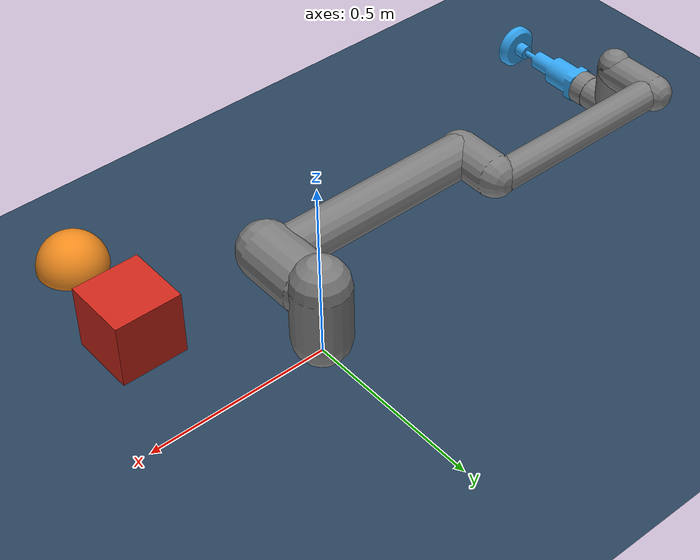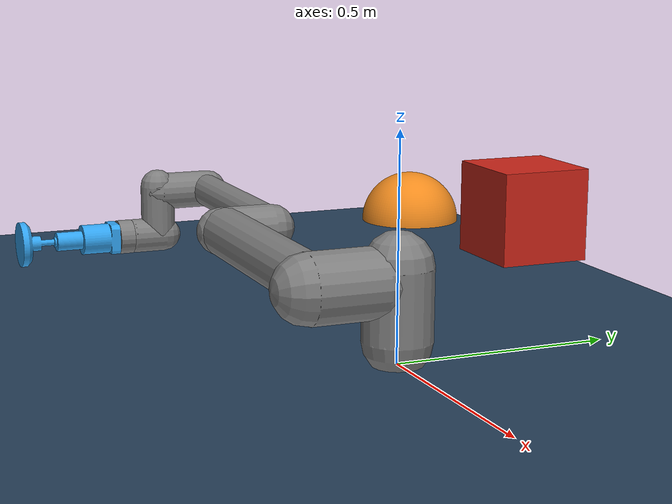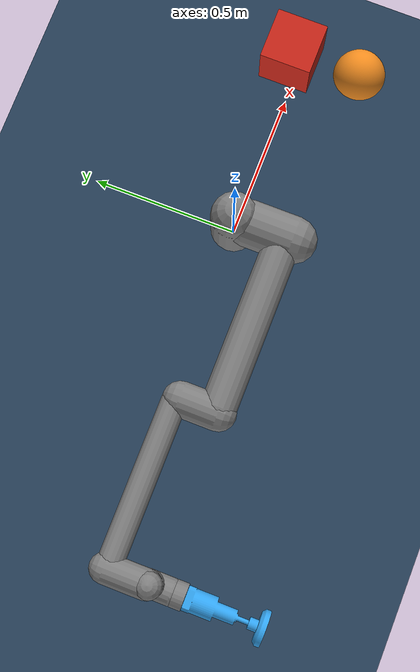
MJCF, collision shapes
<mujoco model="ur10e contact scene">
  <include file="ur10e.xml"/>

  <statistic center="0.35 0 0.45" extent="1.3"/>

  <option timestep="0.001" integrator="implicitfast" gravity="0 0 -9.81"/>

  <visual>
    <scale framelength="0.2" framewidth="0.02"/>
    <headlight diffuse="0.6 0.6 0.6" ambient="0.1 0.1 0.1" specular="0 0 0"/>
    <rgba haze="0.15 0.25 0.35 1"/>
    <global azimuth="120" elevation="-20"/>
  </visual>

  <asset>
    <texture type="skybox" builtin="gradient" rgb1="0.3 0.5 0.7" rgb2="0 0 0" width="512" height="3072"/>
    <texture type="2d" name="groundplane" builtin="checker" mark="edge" rgb1="0.2 0.3 0.4" rgb2="0.1 0.2 0.3"
      markrgb="0.8 0.8 0.8" width="300" height="300"/>
    <material name="groundplane" texture="groundplane" texuniform="true" texrepeat="5 5" reflectance="0.2"/>
    <material name="contact_red" rgba="0.8 0.15 0.1 1"/>
    <material name="contact_amber" rgba="0.95 0.55 0.12 1"/>
    <mesh name="contact_hemisphere_mesh" file="contact_hemisphere.obj"/>
  </asset>

  <worldbody>
    <light pos="0 0 1.8" dir="0 0 -1" directional="true"/>
    <geom name="floor" size="0 0 0.05" type="plane" material="groundplane"/>

    <!-- The top face is aligned with the spindle tip at the nominal contact pose. -->
    <body name="contact_box" pos="0.5 0.0 0.423">
      <geom name="contact_box_geom" type="box" size="0.08 0.08 0.08" material="contact_red"
            condim="4" friction="1.0 0.01 0.001"/>
    </body>
    <!-- 160 mm diameter; 60 mm gap from box; apex level with box top. -->
    <body name="contact_hemisphere" pos="0.5 -0.22 0.423">
      <geom name="contact_hemisphere_geom" type="mesh" mesh="contact_hemisphere_mesh"
            material="contact_amber" condim="4" friction="1.0 0.01 0.001"/>
    </body>
  </worldbody>
</mujoco>

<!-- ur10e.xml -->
<mujoco model="ur10e">
  <compiler angle="radian" meshdir="assets" autolimits="true"/>

  <option integrator="implicitfast"/>

  <default>
    <default class="ur10e">
      <material specular="0.5" shininess="0.25"/>
      <joint axis="0 1 0" range="-6.28319 6.28319" armature="0.1"/>
      <!-- Position command limit in radians. This limits data.ctrl for position control. -->
      <position ctrlrange="-6.2831 6.2831"/>
      <!--
        Joint position servo implemented with a general actuator:
          torque = 5000 * (q_cmd - q) - 500 * qvel
        gainprm is Kp, and biasprm="0 -Kp -Kd" sets the PD feedback.
      -->
      <general biastype="affine" ctrlrange="-6.2831 6.2831" gainprm="5000" biasprm="0 -5000 -500"/>
      <default class="size4">
        <joint damping="10"/>
        <!-- Actuator torque limit for shoulder joints, in Nm for hinge joints. -->
        <general forcerange="-330 330"/>
      </default>
      <default class="size3">
        <joint damping="5"/>
        <!-- Actuator torque limit for the elbow joint, in Nm for hinge joints. -->
        <general forcerange="-150 150"/>
        <default class="size3_limited">
          <!-- Physical joint angle limit and matching position command limit for elbow. -->
          <joint range="-3.1415 3.1415"/>
          <general ctrlrange="-3.1415 3.1415"/>
        </default>
      </default>
      <default class="size2">
        <joint damping="2"/>
        <!-- Actuator torque limit for wrist joints, in Nm for hinge joints. -->
        <general forcerange="-56 56"/>
      </default>
      <default class="visual">
        <geom type="mesh" contype="0" conaffinity="0" group="2"/>
      </default>
      <default class="collision">
        <geom type="capsule" group="3"/>
        <default class="eef_collision">
          <geom type="cylinder"/>
        </default>
      </default>
      <site size="0.001" rgba="0.5 0.5 0.5 0.3" group="4"/>
    </default>
  </default>

  <asset>
    <material class="ur10e" name="black" rgba="0.033 0.033 0.033 1"/>
    <material class="ur10e" name="jointgray" rgba="0.278 0.278 0.278 1"/>
    <material class="ur10e" name="linkgray" rgba="0.82 0.82 0.82 1"/>
    <material class="ur10e" name="urblue" rgba="0.49 0.678 0.8 1"/>

    <mesh file="base_0.obj"/>
    <mesh file="base_1.obj"/>
    <mesh file="shoulder_0.obj"/>
    <mesh file="shoulder_1.obj"/>
    <mesh file="shoulder_2.obj"/>
    <mesh file="upperarm_0.obj"/>
    <mesh file="upperarm_1.obj"/>
    <mesh file="upperarm_2.obj"/>
    <mesh file="upperarm_3.obj"/>
    <mesh file="forearm_0.obj"/>
    <mesh file="forearm_1.obj"/>
    <mesh file="forearm_2.obj"/>
    <mesh file="forearm_3.obj"/>
    <mesh file="wrist1_0.obj"/>
    <mesh file="wrist1_1.obj"/>
    <mesh file="wrist1_2.obj"/>
    <mesh file="wrist2_0.obj"/>
    <mesh file="wrist2_1.obj"/>
    <mesh file="wrist2_2.obj"/>
    <mesh file="wrist3.obj"/>
    <mesh name="nrs_spindle" file="NRS_spindle.STL"/>
    <material name="spindle_material" rgba="0.2 0.65 0.95 0.3"/>
  </asset>

  <worldbody>
    <light name="spotlight" mode="targetbodycom" target="wrist_2_link" pos="0 -1 2"/>
    <body name="base" quat="0 0 0 -1" childclass="ur10e">
      <inertial mass="4.0" pos="0 0 0" diaginertia="0.0061063308908 0.0061063308908 0.01125"/>
      <geom mesh="base_0" material="black" class="visual"/>
      <geom mesh="base_1" material="jointgray" class="visual"/>
      <body name="shoulder_link" pos="0 0 0.181">
        <inertial pos="0 0 0" mass="7.778" diaginertia="0.0314743 0.0314743 0.0218756"/>
        <joint name="shoulder_pan_joint" class="size4" axis="0 0 1"/>
        <geom mesh="shoulder_0" material="urblue" class="visual"/>
        <geom mesh="shoulder_1" material="black" class="visual"/>
        <geom mesh="shoulder_2" material="jointgray" class="visual"/>
        <geom class="collision" size="0.078 0.08" pos="0 0 -0.05"/>
        <body name="upper_arm_link" pos="0 0.176 0" quat="1 0 1 0">
          <inertial pos="0 0 0.3065" mass="12.93" diaginertia="0.423074 0.423074 0.0363656"/>
          <joint name="shoulder_lift_joint" class="size4"/>
          <geom mesh="upperarm_0" material="black" class="visual"/>
          <geom mesh="upperarm_1" material="jointgray" class="visual"/>
          <geom mesh="upperarm_2" material="urblue" class="visual"/>
          <geom mesh="upperarm_3" material="linkgray" class="visual"/>
          <geom class="collision" pos="0 -0.05 0" quat="1 1 0 0" size="0.078 0.08"/>
          <geom class="collision" size="0.06 0.3" pos="0 0 0.3"/>
          <body name="forearm_link" pos="0 -0.137 0.613">
            <inertial pos="0 0 0.2855" mass="3.87" diaginertia="0.11059 0.11059 0.0108844"/>
            <joint name="elbow_joint" class="size3_limited"/>
            <geom mesh="forearm_0" material="urblue" class="visual"/>
            <geom mesh="forearm_1" material="black" class="visual"/>
            <geom mesh="forearm_2" material="jointgray" class="visual"/>
            <geom mesh="forearm_3" material="linkgray" class="visual"/>
            <geom class="collision" pos="0 0.08 0" quat="1 1 0 0" size="0.058 0.065"/>
            <geom class="collision" size="0.043 0.28" pos="0 0 0.29"/>
            <body name="wrist_1_link" pos="0 0 0.571" quat="1 0 1 0">
              <inertial pos="0 0.135 0" quat="0.5 0.5 -0.5 0.5" mass="1.96"
                diaginertia="0.0055125 0.00510825 0.00510825"/>
              <joint name="wrist_1_joint" class="size2"/>
              <geom mesh="wrist1_0" material="black" class="visual"/>
              <geom mesh="wrist1_1" material="urblue" class="visual"/>
              <geom mesh="wrist1_2" material="jointgray" class="visual"/>
              <geom class="collision" pos="0 0.06 0" quat="1 1 0 0" size="0.05 0.07"/>
              <body name="wrist_2_link" pos="0 0.135 0">
                <inertial pos="0 0 0.12" quat="0.5 0.5 -0.5 0.5" mass="1.96"
                  diaginertia="0.0055125 0.00510825 0.00510825"/>
                <joint name="wrist_2_joint" axis="0 0 1" class="size2"/>
                <geom mesh="wrist2_0" material="black" class="visual"/>
                <geom mesh="wrist2_1" material="urblue" class="visual"/>
                <geom mesh="wrist2_2" material="jointgray" class="visual"/>
                <geom class="collision" size="0.046 0.065" pos="0 0 0.05"/>
                <geom class="collision" pos="0 0.028 0.12" quat="1 1 0 0" size="0.046 0.043"/>
                <body name="wrist_3_link" pos="0 0 0.12">
                  <inertial pos="0 0.092 0" quat="0 1 -1 0" mass="0.202"
                    diaginertia="0.000204525 0.000144346 0.000144346"/>
                  <joint name="wrist_3_joint" class="size2"/>
                  <geom material="linkgray" mesh="wrist3" class="visual"/>
                  <geom class="eef_collision" pos="0 0.097 0" quat="1 1 0 0" size="0.046 0.02"/>
                  <site name="attachment_site" pos="0 0.1 0" quat="-1 1 0 0"/>
                  <body name="nrs_spindle" pos="0 0.118 0" quat="-1 1 0 0">
                    <geom name="nrs_spindle_visual" type="mesh" mesh="nrs_spindle" pos="-0.06 -0.06 0"
                          material="spindle_material"
                          contype="1" conaffinity="1" density="1000"/>
                  </body>
                </body>
              </body>
            </body>
          </body>
        </body>
      </body>
    </body>
  </worldbody>

  <actuator>
    <!--
      These six actuators inherit the position-servo gains and torque limits above.
      Override forcerange here per joint if each joint needs a different torque limit.
    -->
    <general class="size4" name="shoulder_pan" joint="shoulder_pan_joint"/>
    <general class="size4" name="shoulder_lift" joint="shoulder_lift_joint"/>
    <general class="size3_limited" name="elbow" joint="elbow_joint"/>
    <general class="size2" name="wrist_1" joint="wrist_1_joint"/>
    <general class="size2" name="wrist_2" joint="wrist_2_joint"/>
    <general class="size2" name="wrist_3" joint="wrist_3_joint"/>
  </actuator>

  <keyframe>
    <key name="home" qpos="-1.5708 -1.5708 1.5708 -1.5708 -1.5708 0" ctrl="-1.5708 -1.5708 1.5708 -1.5708 -1.5708 0"/>
  </keyframe>
</mujoco>
